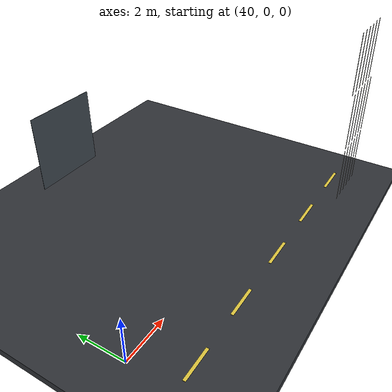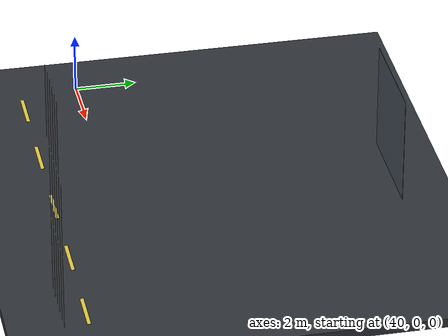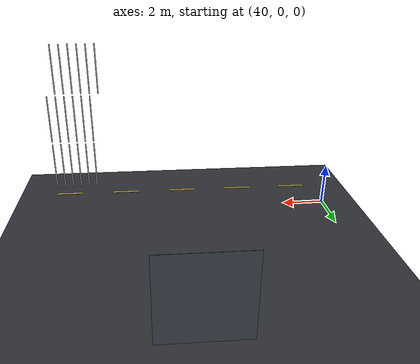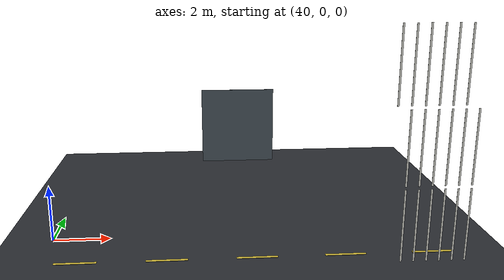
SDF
<sdf version="1.9">
 <world name="iris_mppi_yard_runup60">
  <model name="asphalt">
   <static>true</static>
   <pose>40 0 -0.15 0.0 0.0 0.0</pose>
   <link name="body">
    <collision name="collision"><geometry><box><size>120 60 0.3</size></box></geometry></collision>
    <visual name="visual">
     <geometry><box><size>120 60 0.3</size></box></geometry>
     <material><ambient>.19 .20 .22 1</ambient><diffuse>.19 .20 .22 1</diffuse></material>
    </visual>
   </link>
  </model>
  <model name="north_loading_door_2">
   <static>true</static>
   <pose>47.1 9.094999999999999 1.8 0.0 0.0 0.0</pose>
   <link name="body">
    <visual name="visual">
     <geometry><box><size>3.5 0.01 3.6</size></box></geometry>
     <material><ambient>.25 .29 .32 1</ambient><diffuse>.25 .29 .32 1</diffuse></material>
    </visual>
   </link>
  </model>
  <model name="rib_0_0_1_1">
   <static>true</static>
   <pose>51.730000000000004 -2.682 1.3 0.0 0.0 0.0</pose>
   <link name="body">
    <visual name="visual">
     <geometry><box><size>0.06 0.008 2.5</size></box></geometry>
     <material><ambient>.75 .75 .72 1</ambient><diffuse>.75 .75 .72 1</diffuse></material>
    </visual>
   </link>
  </model>
  <model name="rib_0_0_2_1">
   <static>true</static>
   <pose>52.160000000000004 -2.682 1.3 0.0 0.0 0.0</pose>
   <link name="body">
    <visual name="visual">
     <geometry><box><size>0.06 0.008 2.5</size></box></geometry>
     <material><ambient>.75 .75 .72 1</ambient><diffuse>.75 .75 .72 1</diffuse></material>
    </visual>
   </link>
  </model>
  <model name="rib_0_0_3_1">
   <static>true</static>
   <pose>52.59 -2.682 1.3 0.0 0.0 0.0</pose>
   <link name="body">
    <visual name="visual">
     <geometry><box><size>0.06 0.008 2.5</size></box></geometry>
     <material><ambient>.75 .75 .72 1</ambient><diffuse>.75 .75 .72 1</diffuse></material>
    </visual>
   </link>
  </model>
  <model name="rib_0_0_4_1">
   <static>true</static>
   <pose>53.02 -2.682 1.3 0.0 0.0 0.0</pose>
   <link name="body">
    <visual name="visual">
     <geometry><box><size>0.06 0.008 2.5</size></box></geometry>
     <material><ambient>.75 .75 .72 1</ambient><diffuse>.75 .75 .72 1</diffuse></material>
    </visual>
   </link>
  </model>
  <model name="rib_0_0_5_1">
   <static>true</static>
   <pose>53.45 -2.682 1.3 0.0 0.0 0.0</pose>
   <link name="body">
    <visual name="visual">
     <geometry><box><size>0.06 0.008 2.5</size></box></geometry>
     <material><ambient>.75 .75 .72 1</ambient><diffuse>.75 .75 .72 1</diffuse></material>
    </visual>
   </link>
  </model>
  <model name="rib_0_0_6_1">
   <static>true</static>
   <pose>53.88 -2.682 1.3 0.0 0.0 0.0</pose>
   <link name="body">
    <visual name="visual">
     <geometry><box><size>0.06 0.008 2.5</size></box></geometry>
     <material><ambient>.75 .75 .72 1</ambient><diffuse>.75 .75 .72 1</diffuse></material>
    </visual>
   </link>
  </model>
  <model name="rib_0_1_1_1">
   <static>true</static>
   <pose>51.730000000000004 -2.682 3.9000000000000004 0.0 0.0 0.0</pose>
   <link name="body">
    <visual name="visual">
     <geometry><box><size>0.06 0.008 2.5</size></box></geometry>
     <material><ambient>.75 .75 .72 1</ambient><diffuse>.75 .75 .72 1</diffuse></material>
    </visual>
   </link>
  </model>
  <model name="rib_0_1_2_1">
   <static>true</static>
   <pose>52.160000000000004 -2.682 3.9000000000000004 0.0 0.0 0.0</pose>
   <link name="body">
    <visual name="visual">
     <geometry><box><size>0.06 0.008 2.5</size></box></geometry>
     <material><ambient>.75 .75 .72 1</ambient><diffuse>.75 .75 .72 1</diffuse></material>
    </visual>
   </link>
  </model>
  <model name="rib_0_1_3_1">
   <static>true</static>
   <pose>52.59 -2.682 3.9000000000000004 0.0 0.0 0.0</pose>
   <link name="body">
    <visual name="visual">
     <geometry><box><size>0.06 0.008 2.5</size></box></geometry>
     <material><ambient>.75 .75 .72 1</ambient><diffuse>.75 .75 .72 1</diffuse></material>
    </visual>
   </link>
  </model>
  <model name="rib_0_1_4_1">
   <static>true</static>
   <pose>53.02 -2.682 3.9000000000000004 0.0 0.0 0.0</pose>
   <link name="body">
    <visual name="visual">
     <geometry><box><size>0.06 0.008 2.5</size></box></geometry>
     <material><ambient>.75 .75 .72 1</ambient><diffuse>.75 .75 .72 1</diffuse></material>
    </visual>
   </link>
  </model>
  <model name="rib_0_1_5_1">
   <static>true</static>
   <pose>53.45 -2.682 3.9000000000000004 0.0 0.0 0.0</pose>
   <link name="body">
    <visual name="visual">
     <geometry><box><size>0.06 0.008 2.5</size></box></geometry>
     <material><ambient>.75 .75 .72 1</ambient><diffuse>.75 .75 .72 1</diffuse></material>
    </visual>
   </link>
  </model>
  <model name="rib_0_1_6_1">
   <static>true</static>
   <pose>53.88 -2.682 3.9000000000000004 0.0 0.0 0.0</pose>
   <link name="body">
    <visual name="visual">
     <geometry><box><size>0.06 0.008 2.5</size></box></geometry>
     <material><ambient>.75 .75 .72 1</ambient><diffuse>.75 .75 .72 1</diffuse></material>
    </visual>
   </link>
  </model>
  <model name="rib_0_2_0_1">
   <static>true</static>
   <pose>51.300000000000004 -2.682 6.5 0.0 0.0 0.0</pose>
   <link name="body">
    <visual name="visual">
     <geometry><box><size>0.06 0.008 2.5</size></box></geometry>
     <material><ambient>.75 .75 .72 1</ambient><diffuse>.75 .75 .72 1</diffuse></material>
    </visual>
   </link>
  </model>
  <model name="rib_0_2_1_1">
   <static>true</static>
   <pose>51.730000000000004 -2.682 6.5 0.0 0.0 0.0</pose>
   <link name="body">
    <visual name="visual">
     <geometry><box><size>0.06 0.008 2.5</size></box></geometry>
     <material><ambient>.75 .75 .72 1</ambient><diffuse>.75 .75 .72 1</diffuse></material>
    </visual>
   </link>
  </model>
  <model name="rib_0_2_2_1">
   <static>true</static>
   <pose>52.160000000000004 -2.682 6.5 0.0 0.0 0.0</pose>
   <link name="body">
    <visual name="visual">
     <geometry><box><size>0.06 0.008 2.5</size></box></geometry>
     <material><ambient>.75 .75 .72 1</ambient><diffuse>.75 .75 .72 1</diffuse></material>
    </visual>
   </link>
  </model>
  <model name="rib_0_2_3_1">
   <static>true</static>
   <pose>52.59 -2.682 6.5 0.0 0.0 0.0</pose>
   <link name="body">
    <visual name="visual">
     <geometry><box><size>0.06 0.008 2.5</size></box></geometry>
     <material><ambient>.75 .75 .72 1</ambient><diffuse>.75 .75 .72 1</diffuse></material>
    </visual>
   </link>
  </model>
  <model name="rib_0_2_4_1">
   <static>true</static>
   <pose>53.02 -2.682 6.5 0.0 0.0 0.0</pose>
   <link name="body">
    <visual name="visual">
     <geometry><box><size>0.06 0.008 2.5</size></box></geometry>
     <material><ambient>.75 .75 .72 1</ambient><diffuse>.75 .75 .72 1</diffuse></material>
    </visual>
   </link>
  </model>
  <model name="rib_0_2_5_1">
   <static>true</static>
   <pose>53.45 -2.682 6.5 0.0 0.0 0.0</pose>
   <link name="body">
    <visual name="visual">
     <geometry><box><size>0.06 0.008 2.5</size></box></geometry>
     <material><ambient>.75 .75 .72 1</ambient><diffuse>.75 .75 .72 1</diffuse></material>
    </visual>
   </link>
  </model>
  <model name="road_dash_-4">
   <static>true</static>
   <pose>41.1 -1.9 0.006 0.0 0.0 0.0</pose>
   <link name="body">
    <visual name="visual">
     <geometry><box><size>1.4 0.12 0.01</size></box></geometry>
     <material><ambient>.9 .8 .25 1</ambient><diffuse>.9 .8 .25 1</diffuse></material>
    </visual>
   </link>
  </model>
  <model name="road_dash_-1">
   <static>true</static>
   <pose>44.1 -1.9 0.006 0.0 0.0 0.0</pose>
   <link name="body">
    <visual name="visual">
     <geometry><box><size>1.4 0.12 0.01</size></box></geometry>
     <material><ambient>.9 .8 .25 1</ambient><diffuse>.9 .8 .25 1</diffuse></material>
    </visual>
   </link>
  </model>
  <model name="road_dash_2">
   <static>true</static>
   <pose>47.1 -1.9 0.006 0.0 0.0 0.0</pose>
   <link name="body">
    <visual name="visual">
     <geometry><box><size>1.4 0.12 0.01</size></box></geometry>
     <material><ambient>.9 .8 .25 1</ambient><diffuse>.9 .8 .25 1</diffuse></material>
    </visual>
   </link>
  </model>
  <model name="road_dash_5">
   <static>true</static>
   <pose>50.1 -1.9 0.006 0.0 0.0 0.0</pose>
   <link name="body">
    <visual name="visual">
     <geometry><box><size>1.4 0.12 0.01</size></box></geometry>
     <material><ambient>.9 .8 .25 1</ambient><diffuse>.9 .8 .25 1</diffuse></material>
    </visual>
   </link>
  </model>
  <model name="road_dash_8">
   <static>true</static>
   <pose>53.1 -1.9 0.006 0.0 0.0 0.0</pose>
   <link name="body">
    <visual name="visual">
     <geometry><box><size>1.4 0.12 0.01</size></box></geometry>
     <material><ambient>.9 .8 .25 1</ambient><diffuse>.9 .8 .25 1</diffuse></material>
    </visual>
   </link>
  </model>
 </world>
</sdf>
